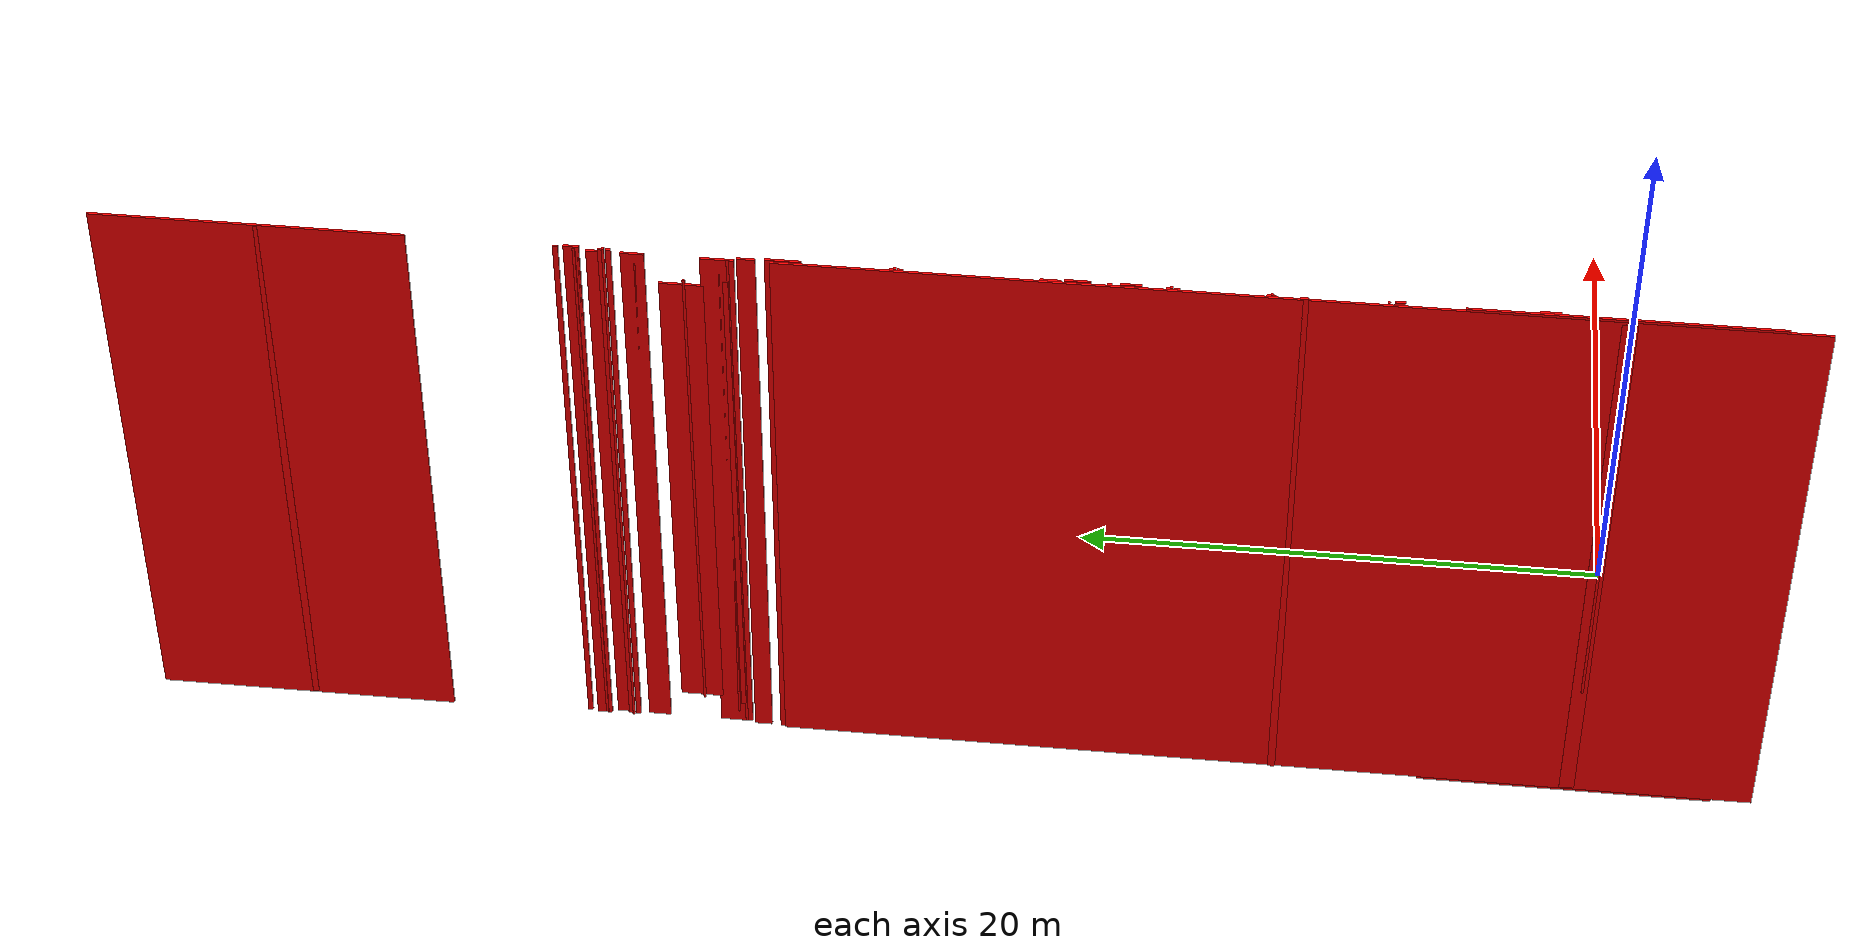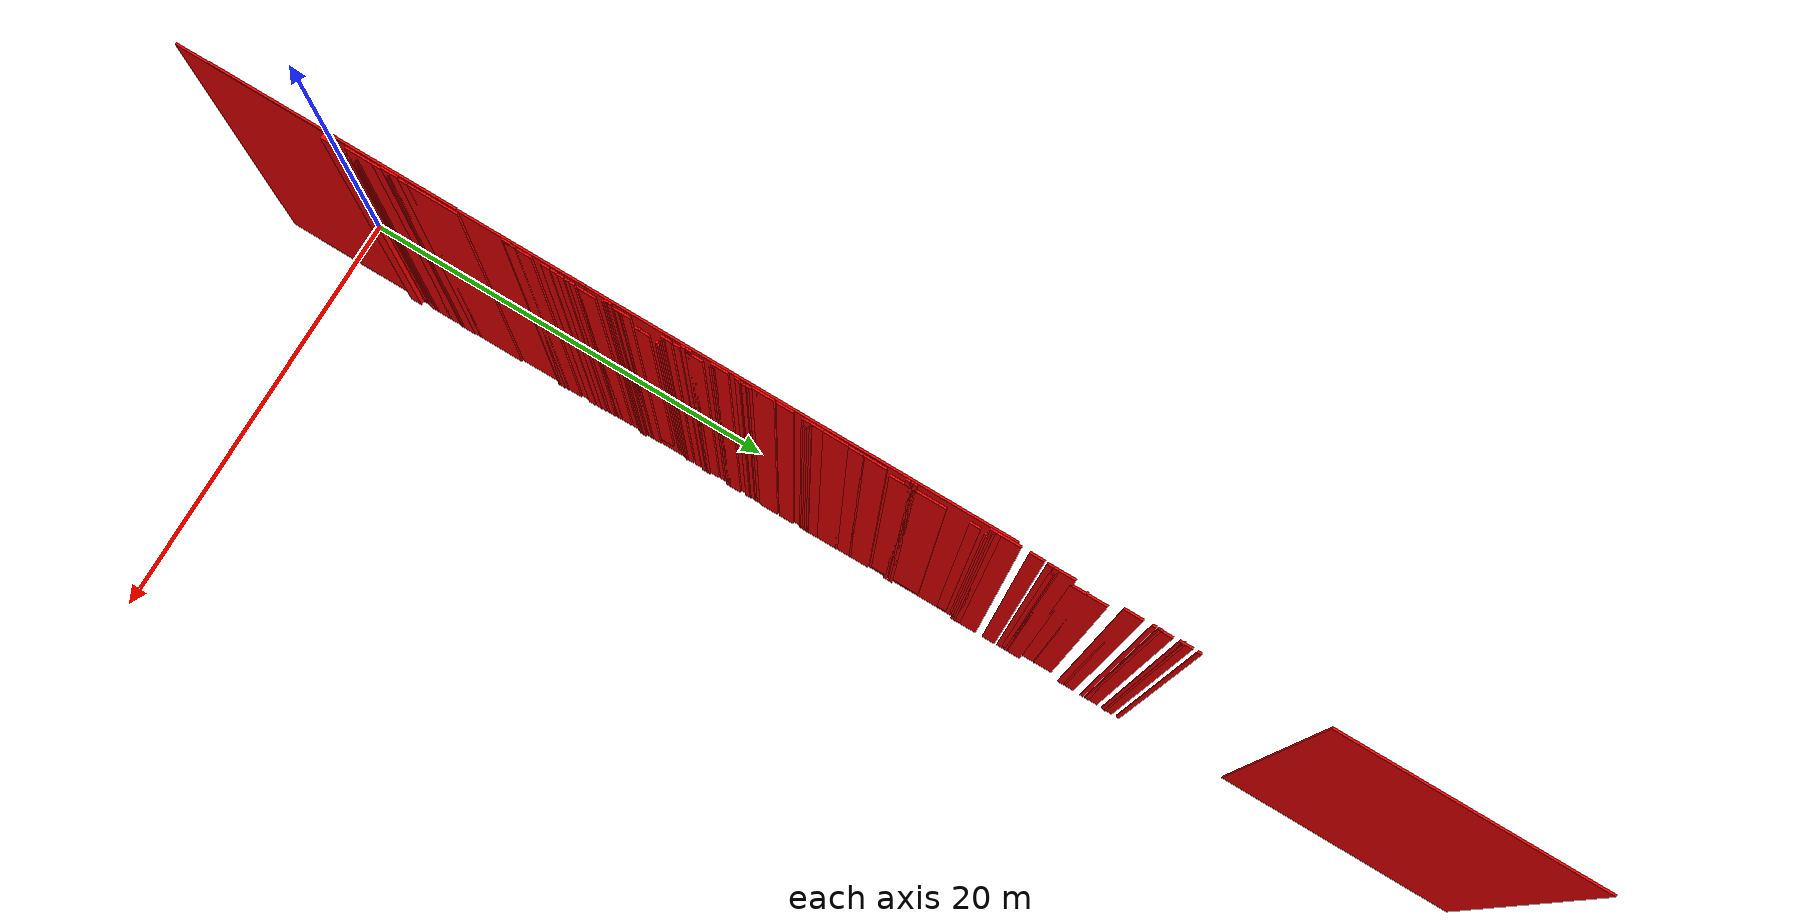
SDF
<?xml version="1.0" ?>
<sdf version="1.5">
  <world name="box_world.world">
    <!-- A global light source -->
    <include>
      <uri>model://sun</uri>
    </include>
    <model name="box_0">
          <pose>0.0 0.0 0.5 0.0 0.0 0.0</pose>
          <link name="link">
            <collision name="collision">
              <geometry>
                <box>
                  <size>0.30000000000000004 0.1 13.200000000000001</size>
                </box>
              </geometry>
            </collision>
            <visual name="visual">
              <geometry>
                <box>
                  <size>0.30000000000000004 0.1 13.200000000000001</size>
                </box>
              </geometry>
              <material>
                <ambient>1 0 0 1</ambient>
                <diffuse>1 0 0 1</diffuse>
              </material>
            </visual>
          </link>
    </model>
    <model name="box_1">
          <pose>0.0 0.1 0.5 0.0 0.0 0.0</pose>
          <link name="link">
            <collision name="collision">
              <geometry>
                <box>
                  <size>0.1 0.1 24.0</size>
                </box>
              </geometry>
            </collision>
            <visual name="visual">
              <geometry>
                <box>
                  <size>0.1 0.1 24.0</size>
                </box>
              </geometry>
              <material>
                <ambient>1 0 0 1</ambient>
                <diffuse>1 0 0 1</diffuse>
              </material>
            </visual>
          </link>
    </model>
    <model name="box_2">
          <pose>0.0 0.2 0.5 0.0 0.0 0.0</pose>
          <link name="link">
            <collision name="collision">
              <geometry>
                <box>
                  <size>0.1 11.8 24.3</size>
                </box>
              </geometry>
            </collision>
            <visual name="visual">
              <geometry>
                <box>
                  <size>0.1 11.8 24.3</size>
                </box>
              </geometry>
              <material>
                <ambient>1 0 0 1</ambient>
                <diffuse>1 0 0 1</diffuse>
              </material>
            </visual>
          </link>
    </model>
    <model name="box_3">
          <pose>0.0 12.0 0.5 0.0 0.0 0.0</pose>
          <link name="link">
            <collision name="collision">
              <geometry>
                <box>
                  <size>0.1 0.30000000000000004 24.200000000000003</size>
                </box>
              </geometry>
            </collision>
            <visual name="visual">
              <geometry>
                <box>
                  <size>0.1 0.30000000000000004 24.200000000000003</size>
                </box>
              </geometry>
              <material>
                <ambient>1 0 0 1</ambient>
                <diffuse>1 0 0 1</diffuse>
              </material>
            </visual>
          </link>
    </model>
    <model name="box_4">
          <pose>0.0 12.3 0.5 0.0 0.0 0.0</pose>
          <link name="link">
            <collision name="collision">
              <geometry>
                <box>
                  <size>0.1 39.2 24.1</size>
                </box>
              </geometry>
            </collision>
            <visual name="visual">
              <geometry>
                <box>
                  <size>0.1 39.2 24.1</size>
                </box>
              </geometry>
              <material>
                <ambient>1 0 0 1</ambient>
                <diffuse>1 0 0 1</diffuse>
              </material>
            </visual>
          </link>
    </model>
    <model name="box_5">
          <pose>0.0 51.5 0.5 0.0 0.0 0.0</pose>
          <link name="link">
            <collision name="collision">
              <geometry>
                <box>
                  <size>0.1 0.30000000000000004 24.200000000000003</size>
                </box>
              </geometry>
            </collision>
            <visual name="visual">
              <geometry>
                <box>
                  <size>0.1 0.30000000000000004 24.200000000000003</size>
                </box>
              </geometry>
              <material>
                <ambient>1 0 0 1</ambient>
                <diffuse>1 0 0 1</diffuse>
              </material>
            </visual>
          </link>
    </model>
    <model name="box_6">
          <pose>0.0 51.800000000000004 0.5 0.0 0.0 0.0</pose>
          <link name="link">
            <collision name="collision">
              <geometry>
                <box>
                  <size>0.1 12.200000000000001 24.3</size>
                </box>
              </geometry>
            </collision>
            <visual name="visual">
              <geometry>
                <box>
                  <size>0.1 12.200000000000001 24.3</size>
                </box>
              </geometry>
              <material>
                <ambient>1 0 0 1</ambient>
                <diffuse>1 0 0 1</diffuse>
              </material>
            </visual>
          </link>
    </model>
    <model name="box_7">
          <pose>0.1 0.1 0.5 0.0 0.0 0.0</pose>
          <link name="link">
            <collision name="collision">
              <geometry>
                <box>
                  <size>0.4 0.6000000000000001 23.900000000000002</size>
                </box>
              </geometry>
            </collision>
            <visual name="visual">
              <geometry>
                <box>
                  <size>0.4 0.6000000000000001 23.900000000000002</size>
                </box>
              </geometry>
              <material>
                <ambient>1 0 0 1</ambient>
                <diffuse>1 0 0 1</diffuse>
              </material>
            </visual>
          </link>
    </model>
    <model name="box_8">
          <pose>0.1 0.7000000000000001 0.5 0.0 0.0 0.0</pose>
          <link name="link">
            <collision name="collision">
              <geometry>
                <box>
                  <size>0.1 0.1 22.200000000000003</size>
                </box>
              </geometry>
            </collision>
            <visual name="visual">
              <geometry>
                <box>
                  <size>0.1 0.1 22.200000000000003</size>
                </box>
              </geometry>
              <material>
                <ambient>1 0 0 1</ambient>
                <diffuse>1 0 0 1</diffuse>
              </material>
            </visual>
          </link>
    </model>
    <model name="box_9">
          <pose>0.1 0.8 0.5 0.0 0.0 0.0</pose>
          <link name="link">
            <collision name="collision">
              <geometry>
                <box>
                  <size>0.2 0.2 21.3</size>
                </box>
              </geometry>
            </collision>
            <visual name="visual">
              <geometry>
                <box>
                  <size>0.2 0.2 21.3</size>
                </box>
              </geometry>
              <material>
                <ambient>1 0 0 1</ambient>
                <diffuse>1 0 0 1</diffuse>
              </material>
            </visual>
          </link>
    </model>
    <model name="box_10">
          <pose>0.1 1.0 0.5 0.0 0.0 0.0</pose>
          <link name="link">
            <collision name="collision">
              <geometry>
                <box>
                  <size>0.2 0.1 20.900000000000002</size>
                </box>
              </geometry>
            </collision>
            <visual name="visual">
              <geometry>
                <box>
                  <size>0.2 0.1 20.900000000000002</size>
                </box>
              </geometry>
              <material>
                <ambient>1 0 0 1</ambient>
                <diffuse>1 0 0 1</diffuse>
              </material>
            </visual>
          </link>
    </model>
    <model name="box_11">
          <pose>0.1 1.1 0.5 0.0 0.0 0.0</pose>
          <link name="link">
            <collision name="collision">
              <geometry>
                <box>
                  <size>0.2 0.1 20.0</size>
                </box>
              </geometry>
            </collision>
            <visual name="visual">
              <geometry>
                <box>
                  <size>0.2 0.1 20.0</size>
                </box>
              </geometry>
              <material>
                <ambient>1 0 0 1</ambient>
                <diffuse>1 0 0 1</diffuse>
              </material>
            </visual>
          </link>
    </model>
    <model name="box_12">
          <pose>0.1 1.2000000000000002 0.5 0.0 0.0 0.0</pose>
          <link name="link">
            <collision name="collision">
              <geometry>
                <box>
                  <size>0.2 0.1 21.0</size>
                </box>
              </geometry>
            </collision>
            <visual name="visual">
              <geometry>
                <box>
                  <size>0.2 0.1 21.0</size>
                </box>
              </geometry>
              <material>
                <ambient>1 0 0 1</ambient>
                <diffuse>1 0 0 1</diffuse>
              </material>
            </visual>
          </link>
    </model>
    <model name="box_13">
          <pose>0.1 1.3 0.5 0.0 0.0 0.0</pose>
          <link name="link">
            <collision name="collision">
              <geometry>
                <box>
                  <size>0.2 0.1 22.5</size>
                </box>
              </geometry>
            </collision>
            <visual name="visual">
              <geometry>
                <box>
                  <size>0.2 0.1 22.5</size>
                </box>
              </geometry>
              <material>
                <ambient>1 0 0 1</ambient>
                <diffuse>1 0 0 1</diffuse>
              </material>
            </visual>
          </link>
    </model>
    <model name="box_14">
          <pose>0.1 1.4000000000000001 0.5 0.0 0.0 0.0</pose>
          <link name="link">
            <collision name="collision">
              <geometry>
                <box>
                  <size>0.1 0.1 23.8</size>
                </box>
              </geometry>
            </collision>
            <visual name="visual">
              <geometry>
                <box>
                  <size>0.1 0.1 23.8</size>
                </box>
              </geometry>
              <material>
                <ambient>1 0 0 1</ambient>
                <diffuse>1 0 0 1</diffuse>
              </material>
            </visual>
          </link>
    </model>
    <model name="box_15">
          <pose>0.1 1.5 0.5 0.0 0.0 0.0</pose>
          <link name="link">
            <collision name="collision">
              <geometry>
                <box>
                  <size>0.1 1.3 23.900000000000002</size>
                </box>
              </geometry>
            </collision>
            <visual name="visual">
              <geometry>
                <box>
                  <size>0.1 1.3 23.900000000000002</size>
                </box>
              </geometry>
              <material>
                <ambient>1 0 0 1</ambient>
                <diffuse>1 0 0 1</diffuse>
              </material>
            </visual>
          </link>
    </model>
    <model name="box_16">
          <pose>0.1 2.8000000000000003 0.5 0.0 0.0 0.0</pose>
          <link name="link">
            <collision name="collision">
              <geometry>
                <box>
                  <size>0.2 0.1 23.1</size>
                </box>
              </geometry>
            </collision>
            <visual name="visual">
              <geometry>
                <box>
                  <size>0.2 0.1 23.1</size>
                </box>
              </geometry>
              <material>
                <ambient>1 0 0 1</ambient>
                <diffuse>1 0 0 1</diffuse>
              </material>
            </visual>
          </link>
    </model>
    <model name="box_17">
          <pose>0.1 2.9000000000000004 0.5 0.0 0.0 0.0</pose>
          <link name="link">
            <collision name="collision">
              <geometry>
                <box>
                  <size>0.1 0.1 23.5</size>
                </box>
              </geometry>
            </collision>
            <visual name="visual">
              <geometry>
                <box>
                  <size>0.1 0.1 23.5</size>
                </box>
              </geometry>
              <material>
                <ambient>1 0 0 1</ambient>
                <diffuse>1 0 0 1</diffuse>
              </material>
            </visual>
          </link>
    </model>
    <model name="box_18">
          <pose>0.1 3.0 0.5 0.0 0.0 0.0</pose>
          <link name="link">
            <collision name="collision">
              <geometry>
                <box>
                  <size>0.1 0.8 24.3</size>
                </box>
              </geometry>
            </collision>
            <visual name="visual">
              <geometry>
                <box>
                  <size>0.1 0.8 24.3</size>
                </box>
              </geometry>
              <material>
                <ambient>1 0 0 1</ambient>
                <diffuse>1 0 0 1</diffuse>
              </material>
            </visual>
          </link>
    </model>
    <model name="box_19">
          <pose>0.1 3.8000000000000003 0.5 0.0 0.0 0.0</pose>
          <link name="link">
            <collision name="collision">
              <geometry>
                <box>
                  <size>0.1 0.1 24.0</size>
                </box>
              </geometry>
            </collision>
            <visual name="visual">
              <geometry>
                <box>
                  <size>0.1 0.1 24.0</size>
                </box>
              </geometry>
              <material>
                <ambient>1 0 0 1</ambient>
                <diffuse>1 0 0 1</diffuse>
              </material>
            </visual>
          </link>
    </model>
    <model name="box_20">
          <pose>0.1 3.9000000000000004 0.5 0.0 0.0 0.0</pose>
          <link name="link">
            <collision name="collision">
              <geometry>
                <box>
                  <size>0.1 4.6000000000000005 23.900000000000002</size>
                </box>
              </geometry>
            </collision>
            <visual name="visual">
              <geometry>
                <box>
                  <size>0.1 4.6000000000000005 23.900000000000002</size>
                </box>
              </geometry>
              <material>
                <ambient>1 0 0 1</ambient>
                <diffuse>1 0 0 1</diffuse>
              </material>
            </visual>
          </link>
    </model>
    <model name="box_21">
          <pose>0.1 8.5 0.5 0.0 0.0 0.0</pose>
          <link name="link">
            <collision name="collision">
              <geometry>
                <box>
                  <size>0.1 0.4 24.3</size>
                </box>
              </geometry>
            </collision>
            <visual name="visual">
              <geometry>
                <box>
                  <size>0.1 0.4 24.3</size>
                </box>
              </geometry>
              <material>
                <ambient>1 0 0 1</ambient>
                <diffuse>1 0 0 1</diffuse>
              </material>
            </visual>
          </link>
    </model>
    <model name="box_22">
          <pose>0.1 8.9 0.5 0.0 0.0 0.0</pose>
          <link name="link">
            <collision name="collision">
              <geometry>
                <box>
                  <size>0.1 0.1 24.200000000000003</size>
                </box>
              </geometry>
            </collision>
            <visual name="visual">
              <geometry>
                <box>
                  <size>0.1 0.1 24.200000000000003</size>
                </box>
              </geometry>
              <material>
                <ambient>1 0 0 1</ambient>
                <diffuse>1 0 0 1</diffuse>
              </material>
            </visual>
          </link>
    </model>
    <model name="box_23">
          <pose>0.1 9.0 0.5 0.0 0.0 0.0</pose>
          <link name="link">
            <collision name="collision">
              <geometry>
                <box>
                  <size>0.1 1.3 23.900000000000002</size>
                </box>
              </geometry>
            </collision>
            <visual name="visual">
              <geometry>
                <box>
                  <size>0.1 1.3 23.900000000000002</size>
                </box>
              </geometry>
              <material>
                <ambient>1 0 0 1</ambient>
                <diffuse>1 0 0 1</diffuse>
              </material>
            </visual>
          </link>
    </model>
    <model name="box_24">
          <pose>0.1 10.3 0.5 0.0 0.0 0.0</pose>
          <link name="link">
            <collision name="collision">
              <geometry>
                <box>
                  <size>0.1 0.4 23.8</size>
                </box>
              </geometry>
            </collision>
            <visual name="visual">
              <geometry>
                <box>
                  <size>0.1 0.4 23.8</size>
                </box>
              </geometry>
              <material>
                <ambient>1 0 0 1</ambient>
                <diffuse>1 0 0 1</diffuse>
              </material>
            </visual>
          </link>
    </model>
    <model name="box_25">
          <pose>0.1 10.700000000000001 0.5 0.0 0.0 0.0</pose>
          <link name="link">
            <collision name="collision">
              <geometry>
                <box>
                  <size>0.1 0.30000000000000004 23.700000000000003</size>
                </box>
              </geometry>
            </collision>
            <visual name="visual">
              <geometry>
                <box>
                  <size>0.1 0.30000000000000004 23.700000000000003</size>
                </box>
              </geometry>
              <material>
                <ambient>1 0 0 1</ambient>
                <diffuse>1 0 0 1</diffuse>
              </material>
            </visual>
          </link>
    </model>
    <model name="box_26">
          <pose>0.1 11.0 0.5 0.0 0.0 0.0</pose>
          <link name="link">
            <collision name="collision">
              <geometry>
                <box>
                  <size>0.1 0.30000000000000004 23.5</size>
                </box>
              </geometry>
            </collision>
            <visual name="visual">
              <geometry>
                <box>
                  <size>0.1 0.30000000000000004 23.5</size>
                </box>
              </geometry>
              <material>
                <ambient>1 0 0 1</ambient>
                <diffuse>1 0 0 1</diffuse>
              </material>
            </visual>
          </link>
    </model>
    <model name="box_27">
          <pose>0.1 11.3 0.5 0.0 0.0 0.0</pose>
          <link name="link">
            <collision name="collision">
              <geometry>
                <box>
                  <size>0.1 0.2 23.400000000000002</size>
                </box>
              </geometry>
            </collision>
            <visual name="visual">
              <geometry>
                <box>
                  <size>0.1 0.2 23.400000000000002</size>
                </box>
              </geometry>
              <material>
                <ambient>1 0 0 1</ambient>
                <diffuse>1 0 0 1</diffuse>
              </material>
            </visual>
          </link>
    </model>
    <model name="box_28">
          <pose>0.1 11.5 0.5 0.0 0.0 0.0</pose>
          <link name="link">
            <collision name="collision">
              <geometry>
                <box>
                  <size>0.1 0.30000000000000004 23.3</size>
                </box>
              </geometry>
            </collision>
            <visual name="visual">
              <geometry>
                <box>
                  <size>0.1 0.30000000000000004 23.3</size>
                </box>
              </geometry>
              <material>
                <ambient>1 0 0 1</ambient>
                <diffuse>1 0 0 1</diffuse>
              </material>
            </visual>
          </link>
    </model>
    <model name="box_29">
          <pose>0.1 11.8 0.5 0.0 0.0 0.0</pose>
          <link name="link">
            <collision name="collision">
              <geometry>
                <box>
                  <size>0.1 0.1 23.200000000000003</size>
                </box>
              </geometry>
            </collision>
            <visual name="visual">
              <geometry>
                <box>
                  <size>0.1 0.1 23.200000000000003</size>
                </box>
              </geometry>
              <material>
                <ambient>1 0 0 1</ambient>
                <diffuse>1 0 0 1</diffuse>
              </material>
            </visual>
          </link>
    </model>
    <model name="box_30">
          <pose>0.1 11.9 0.5 0.0 0.0 0.0</pose>
          <link name="link">
            <collision name="collision">
              <geometry>
                <box>
                  <size>0.1 0.30000000000000004 23.1</size>
                </box>
              </geometry>
            </collision>
            <visual name="visual">
              <geometry>
                <box>
                  <size>0.1 0.30000000000000004 23.1</size>
                </box>
              </geometry>
              <material>
                <ambient>1 0 0 1</ambient>
                <diffuse>1 0 0 1</diffuse>
              </material>
            </visual>
          </link>
    </model>
    <model name="box_31">
          <pose>0.1 12.200000000000001 0.5 0.0 0.0 0.0</pose>
          <link name="link">
            <collision name="collision">
              <geometry>
                <box>
                  <size>0.1 0.8 23.0</size>
                </box>
              </geometry>
            </collision>
            <visual name="visual">
              <geometry>
                <box>
                  <size>0.1 0.8 23.0</size>
                </box>
              </geometry>
              <material>
                <ambient>1 0 0 1</ambient>
                <diffuse>1 0 0 1</diffuse>
              </material>
            </visual>
          </link>
    </model>
    <model name="box_32">
          <pose>0.1 13.0 0.5 0.0 0.0 0.0</pose>
          <link name="link">
            <collision name="collision">
              <geometry>
                <box>
                  <size>0.1 0.1 23.6</size>
                </box>
              </geometry>
            </collision>
            <visual name="visual">
              <geometry>
                <box>
                  <size>0.1 0.1 23.6</size>
                </box>
              </geometry>
              <material>
                <ambient>1 0 0 1</ambient>
                <diffuse>1 0 0 1</diffuse>
              </material>
            </visual>
          </link>
    </model>
    <model name="box_33">
          <pose>0.1 13.100000000000001 0.5 0.0 0.0 0.0</pose>
          <link name="link">
            <collision name="collision">
              <geometry>
                <box>
                  <size>0.1 0.1 24.1</size>
                </box>
              </geometry>
            </collision>
            <visual name="visual">
              <geometry>
                <box>
                  <size>0.1 0.1 24.1</size>
                </box>
              </geometry>
              <material>
                <ambient>1 0 0 1</ambient>
                <diffuse>1 0 0 1</diffuse>
              </material>
            </visual>
          </link>
    </model>
    <model name="box_34">
          <pose>0.1 13.200000000000001 0.5 0.0 0.0 0.0</pose>
          <link name="link">
            <collision name="collision">
              <geometry>
                <box>
                  <size>0.1 0.1 24.200000000000003</size>
                </box>
              </geometry>
            </collision>
            <visual name="visual">
              <geometry>
                <box>
                  <size>0.1 0.1 24.200000000000003</size>
                </box>
              </geometry>
              <material>
                <ambient>1 0 0 1</ambient>
                <diffuse>1 0 0 1</diffuse>
              </material>
            </visual>
          </link>
    </model>
    <model name="box_35">
          <pose>0.1 13.3 0.5 0.0 0.0 0.0</pose>
          <link name="link">
            <collision name="collision">
              <geometry>
                <box>
                  <size>0.1 0.2 24.1</size>
                </box>
              </geometry>
            </collision>
            <visual name="visual">
              <geometry>
                <box>
                  <size>0.1 0.2 24.1</size>
                </box>
              </geometry>
              <material>
                <ambient>1 0 0 1</ambient>
                <diffuse>1 0 0 1</diffuse>
              </material>
            </visual>
          </link>
    </model>
    <model name="box_36">
          <pose>0.1 13.5 0.5 0.0 0.0 0.0</pose>
          <link name="link">
            <collision name="collision">
              <geometry>
                <box>
                  <size>0.1 0.1 23.3</size>
                </box>
              </geometry>
            </collision>
            <visual name="visual">
              <geometry>
                <box>
                  <size>0.1 0.1 23.3</size>
                </box>
              </geometry>
              <material>
                <ambient>1 0 0 1</ambient>
                <diffuse>1 0 0 1</diffuse>
              </material>
            </visual>
          </link>
    </model>
    <model name="box_37">
          <pose>0.1 13.600000000000001 0.5 0.0 0.0 0.0</pose>
          <link name="link">
            <collision name="collision">
              <geometry>
                <box>
                  <size>0.1 0.2 23.1</size>
                </box>
              </geometry>
            </collision>
            <visual name="visual">
              <geometry>
                <box>
                  <size>0.1 0.2 23.1</size>
                </box>
              </geometry>
              <material>
                <ambient>1 0 0 1</ambient>
                <diffuse>1 0 0 1</diffuse>
              </material>
            </visual>
          </link>
    </model>
    <model name="box_38">
          <pose>0.1 13.8 0.5 0.0 0.0 0.0</pose>
          <link name="link">
            <collision name="collision">
              <geometry>
                <box>
                  <size>0.1 0.1 23.200000000000003</size>
                </box>
              </geometry>
            </collision>
            <visual name="visual">
              <geometry>
                <box>
                  <size>0.1 0.1 23.200000000000003</size>
                </box>
              </geometry>
              <material>
                <ambient>1 0 0 1</ambient>
                <diffuse>1 0 0 1</diffuse>
              </material>
            </visual>
          </link>
    </model>
    <model name="box_39">
          <pose>0.1 13.9 0.5 0.0 0.0 0.0</pose>
          <link name="link">
            <collision name="collision">
              <geometry>
                <box>
                  <size>0.1 0.7000000000000001 23.3</size>
                </box>
              </geometry>
            </collision>
            <visual name="visual">
              <geometry>
                <box>
                  <size>0.1 0.7000000000000001 23.3</size>
                </box>
              </geometry>
              <material>
                <ambient>1 0 0 1</ambient>
                <diffuse>1 0 0 1</diffuse>
              </material>
            </visual>
          </link>
    </model>
    <model name="box_40">
          <pose>0.1 14.600000000000001 0.5 0.0 0.0 0.0</pose>
          <link name="link">
            <collision name="collision">
              <geometry>
                <box>
                  <size>0.1 0.1 21.200000000000003</size>
                </box>
              </geometry>
            </collision>
            <visual name="visual">
              <geometry>
                <box>
                  <size>0.1 0.1 21.200000000000003</size>
                </box>
              </geometry>
              <material>
                <ambient>1 0 0 1</ambient>
                <diffuse>1 0 0 1</diffuse>
              </material>
            </visual>
          </link>
    </model>
    <model name="box_41">
          <pose>0.1 14.700000000000001 0.5 0.0 0.0 0.0</pose>
          <link name="link">
            <collision name="collision">
              <geometry>
                <box>
                  <size>0.1 0.7000000000000001 20.900000000000002</size>
                </box>
              </geometry>
            </collision>
            <visual name="visual">
              <geometry>
                <box>
                  <size>0.1 0.7000000000000001 20.900000000000002</size>
                </box>
              </geometry>
              <material>
                <ambient>1 0 0 1</ambient>
                <diffuse>1 0 0 1</diffuse>
              </material>
            </visual>
          </link>
    </model>
    <model name="box_42">
          <pose>0.1 15.4 0.5 0.0 0.0 0.0</pose>
          <link name="link">
            <collision name="collision">
              <geometry>
                <box>
                  <size>0.2 0.1 20.400000000000002</size>
                </box>
              </geometry>
            </collision>
            <visual name="visual">
              <geometry>
                <box>
                  <size>0.2 0.1 20.400000000000002</size>
                </box>
              </geometry>
              <material>
                <ambient>1 0 0 1</ambient>
                <diffuse>1 0 0 1</diffuse>
              </material>
            </visual>
          </link>
    </model>
    <model name="box_43">
          <pose>0.1 15.5 0.5 0.0 0.0 0.0</pose>
          <link name="link">
            <collision name="collision">
              <geometry>
                <box>
                  <size>0.2 0.1 20.0</size>
                </box>
              </geometry>
            </collision>
            <visual name="visual">
              <geometry>
                <box>
                  <size>0.2 0.1 20.0</size>
                </box>
              </geometry>
              <material>
                <ambient>1 0 0 1</ambient>
                <diffuse>1 0 0 1</diffuse>
              </material>
            </visual>
          </link>
    </model>
    <model name="box_44">
          <pose>0.1 15.600000000000001 0.5 0.0 0.0 0.0</pose>
          <link name="link">
            <collision name="collision">
              <geometry>
                <box>
                  <size>0.2 0.1 20.900000000000002</size>
                </box>
              </geometry>
            </collision>
            <visual name="visual">
              <geometry>
                <box>
                  <size>0.2 0.1 20.900000000000002</size>
                </box>
              </geometry>
              <material>
                <ambient>1 0 0 1</ambient>
                <diffuse>1 0 0 1</diffuse>
              </material>
            </visual>
          </link>
    </model>
    <model name="box_45">
          <pose>0.1 15.700000000000001 0.5 0.0 0.0 0.0</pose>
          <link name="link">
            <collision name="collision">
              <geometry>
                <box>
                  <size>0.2 0.1 22.5</size>
                </box>
              </geometry>
            </collision>
            <visual name="visual">
              <geometry>
                <box>
                  <size>0.2 0.1 22.5</size>
                </box>
              </geometry>
              <material>
                <ambient>1 0 0 1</ambient>
                <diffuse>1 0 0 1</diffuse>
              </material>
            </visual>
          </link>
    </model>
    <model name="box_46">
          <pose>0.1 15.8 0.5 0.0 0.0 0.0</pose>
          <link name="link">
            <collision name="collision">
              <geometry>
                <box>
                  <size>0.2 0.1 23.3</size>
                </box>
              </geometry>
            </collision>
            <visual name="visual">
              <geometry>
                <box>
                  <size>0.2 0.1 23.3</size>
                </box>
              </geometry>
              <material>
                <ambient>1 0 0 1</ambient>
                <diffuse>1 0 0 1</diffuse>
              </material>
            </visual>
          </link>
    </model>
    <model name="box_47">
          <pose>0.1 15.9 0.5 0.0 0.0 0.0</pose>
          <link name="link">
            <collision name="collision">
              <geometry>
                <box>
                  <size>0.1 0.5 23.400000000000002</size>
                </box>
              </geometry>
            </collision>
            <visual name="visual">
              <geometry>
                <box>
                  <size>0.1 0.5 23.400000000000002</size>
                </box>
              </geometry>
              <material>
                <ambient>1 0 0 1</ambient>
                <diffuse>1 0 0 1</diffuse>
              </material>
            </visual>
          </link>
    </model>
    <model name="box_48">
          <pose>0.1 16.400000000000002 0.5 0.0 0.0 0.0</pose>
          <link name="link">
            <collision name="collision">
              <geometry>
                <box>
                  <size>0.1 0.30000000000000004 23.3</size>
                </box>
              </geometry>
            </collision>
            <visual name="visual">
              <geometry>
                <box>
                  <size>0.1 0.30000000000000004 23.3</size>
                </box>
              </geometry>
              <material>
                <ambient>1 0 0 1</ambient>
                <diffuse>1 0 0 1</diffuse>
              </material>
            </visual>
          </link>
    </model>
    <model name="box_49">
          <pose>0.1 16.7 0.5 0.0 0.0 0.0</pose>
          <link name="link">
            <collision name="collision">
              <geometry>
                <box>
                  <size>0.1 0.2 24.1</size>
                </box>
              </geometry>
            </collision>
            <visual name="visual">
              <geometry>
                <box>
                  <size>0.1 0.2 24.1</size>
                </box>
              </geometry>
              <material>
                <ambient>1 0 0 1</ambient>
                <diffuse>1 0 0 1</diffuse>
              </material>
            </visual>
          </link>
    </model>
    <model name="box_50">
          <pose>0.1 16.900000000000002 0.5 0.0 0.0 0.0</pose>
          <link name="link">
            <collision name="collision">
              <geometry>
                <box>
                  <size>0.1 0.1 24.200000000000003</size>
                </box>
              </geometry>
            </collision>
            <visual name="visual">
              <geometry>
                <box>
                  <size>0.1 0.1 24.200000000000003</size>
                </box>
              </geometry>
              <material>
                <ambient>1 0 0 1</ambient>
                <diffuse>1 0 0 1</diffuse>
              </material>
            </visual>
          </link>
    </model>
    <model name="box_51">
          <pose>0.1 17.0 0.5 0.0 0.0 0.0</pose>
          <link name="link">
            <collision name="collision">
              <geometry>
                <box>
                  <size>0.1 0.2 24.1</size>
                </box>
              </geometry>
            </collision>
            <visual name="visual">
              <geometry>
                <box>
                  <size>0.1 0.2 24.1</size>
                </box>
              </geometry>
              <material>
                <ambient>1 0 0 1</ambient>
                <diffuse>1 0 0 1</diffuse>
              </material>
            </visual>
          </link>
    </model>
    <model name="box_52">
          <pose>0.1 17.2 0.5 0.0 0.0 0.0</pose>
          <link name="link">
            <collision name="collision">
              <geometry>
                <box>
                  <size>0.1 0.8 23.1</size>
                </box>
              </geometry>
            </collision>
            <visual name="visual">
              <geometry>
                <box>
                  <size>0.1 0.8 23.1</size>
                </box>
              </geometry>
              <material>
                <ambient>1 0 0 1</ambient>
                <diffuse>1 0 0 1</diffuse>
              </material>
            </visual>
          </link>
    </model>
    <model name="box_53">
          <pose>0.1 18.0 0.5 0.0 0.0 0.0</pose>
          <link name="link">
            <collision name="collision">
              <geometry>
                <box>
                  <size>0.1 0.2 23.0</size>
                </box>
              </geometry>
            </collision>
            <visual name="visual">
              <geometry>
                <box>
                  <size>0.1 0.2 23.0</size>
                </box>
              </geometry>
              <material>
                <ambient>1 0 0 1</ambient>
                <diffuse>1 0 0 1</diffuse>
              </material>
            </visual>
          </link>
    </model>
    <model name="box_54">
          <pose>0.1 18.2 0.5 0.0 0.0 0.0</pose>
          <link name="link">
            <collision name="collision">
              <geometry>
                <box>
                  <size>0.1 0.2 24.1</size>
                </box>
              </geometry>
            </collision>
            <visual name="visual">
              <geometry>
                <box>
                  <size>0.1 0.2 24.1</size>
                </box>
              </geometry>
              <material>
                <ambient>1 0 0 1</ambient>
                <diffuse>1 0 0 1</diffuse>
              </material>
            </visual>
          </link>
    </model>
    <model name="box_55">
          <pose>0.1 18.400000000000002 0.5 0.0 0.0 0.0</pose>
          <link name="link">
            <collision name="collision">
              <geometry>
                <box>
                  <size>0.1 0.8 24.200000000000003</size>
                </box>
              </geometry>
            </collision>
            <visual name="visual">
              <geometry>
                <box>
                  <size>0.1 0.8 24.200000000000003</size>
                </box>
              </geometry>
              <material>
                <ambient>1 0 0 1</ambient>
                <diffuse>1 0 0 1</diffuse>
              </material>
            </visual>
          </link>
    </model>
    <model name="box_56">
          <pose>0.1 19.200000000000003 0.5 0.0 0.0 0.0</pose>
          <link name="link">
            <collision name="collision">
              <geometry>
                <box>
                  <size>0.1 0.2 24.1</size>
                </box>
              </geometry>
            </collision>
            <visual name="visual">
              <geometry>
                <box>
                  <size>0.1 0.2 24.1</size>
                </box>
              </geometry>
              <material>
                <ambient>1 0 0 1</ambient>
                <diffuse>1 0 0 1</diffuse>
              </material>
            </visual>
          </link>
    </model>
    <model name="box_57">
          <pose>0.1 19.400000000000002 0.5 0.0 0.0 0.0</pose>
          <link name="link">
            <collision name="collision">
              <geometry>
                <box>
                  <size>0.1 0.1 23.700000000000003</size>
                </box>
              </geometry>
            </collision>
            <visual name="visual">
              <geometry>
                <box>
                  <size>0.1 0.1 23.700000000000003</size>
                </box>
              </geometry>
              <material>
                <ambient>1 0 0 1</ambient>
                <diffuse>1 0 0 1</diffuse>
              </material>
            </visual>
          </link>
    </model>
    <model name="box_58">
          <pose>0.1 19.5 0.5 0.0 0.0 0.0</pose>
          <link name="link">
            <collision name="collision">
              <geometry>
                <box>
                  <size>0.1 0.2 23.5</size>
                </box>
              </geometry>
            </collision>
            <visual name="visual">
              <geometry>
                <box>
                  <size>0.1 0.2 23.5</size>
                </box>
              </geometry>
              <material>
                <ambient>1 0 0 1</ambient>
                <diffuse>1 0 0 1</diffuse>
              </material>
            </visual>
          </link>
    </model>
    <model name="box_59">
          <pose>0.1 19.700000000000003 0.5 0.0 0.0 0.0</pose>
          <link name="link">
            <collision name="collision">
              <geometry>
                <box>
                  <size>0.1 0.1 23.6</size>
                </box>
              </geometry>
            </collision>
            <visual name="visual">
              <geometry>
                <box>
                  <size>0.1 0.1 23.6</size>
                </box>
              </geometry>
              <material>
                <ambient>1 0 0 1</ambient>
                <diffuse>1 0 0 1</diffuse>
              </material>
            </visual>
          </link>
    </model>
    <model name="box_60">
          <pose>0.1 19.8 0.5 0.0 0.0 0.0</pose>
          <link name="link">
            <collision name="collision">
              <geometry>
                <box>
                  <size>0.1 0.4 23.700000000000003</size>
                </box>
              </geometry>
            </collision>
            <visual name="visual">
              <geometry>
                <box>
                  <size>0.1 0.4 23.700000000000003</size>
                </box>
              </geometry>
              <material>
                <ambient>1 0 0 1</ambient>
                <diffuse>1 0 0 1</diffuse>
              </material>
            </visual>
          </link>
    </model>
    <model name="box_61">
          <pose>0.1 20.200000000000003 0.5 0.0 0.0 0.0</pose>
          <link name="link">
            <collision name="collision">
              <geometry>
                <box>
                  <size>0.1 0.2 24.1</size>
                </box>
              </geometry>
            </collision>
            <visual name="visual">
              <geometry>
                <box>
                  <size>0.1 0.2 24.1</size>
                </box>
              </geometry>
              <material>
                <ambient>1 0 0 1</ambient>
                <diffuse>1 0 0 1</diffuse>
              </material>
            </visual>
          </link>
    </model>
    <model name="box_62">
          <pose>0.1 20.400000000000002 0.5 0.0 0.0 0.0</pose>
          <link name="link">
            <collision name="collision">
              <geometry>
                <box>
                  <size>0.1 1.0 24.200000000000003</size>
                </box>
              </geometry>
            </collision>
            <visual name="visual">
              <geometry>
                <box>
                  <size>0.1 1.0 24.200000000000003</size>
                </box>
              </geometry>
              <material>
                <ambient>1 0 0 1</ambient>
                <diffuse>1 0 0 1</diffuse>
              </material>
            </visual>
          </link>
    </model>
    <model name="box_63">
          <pose>0.1 21.400000000000002 0.5 0.0 0.0 0.0</pose>
          <link name="link">
            <collision name="collision">
              <geometry>
                <box>
                  <size>0.1 0.8 24.1</size>
                </box>
              </geometry>
            </collision>
            <visual name="visual">
              <geometry>
                <box>
                  <size>0.1 0.8 24.1</size>
                </box>
              </geometry>
              <material>
                <ambient>1 0 0 1</ambient>
                <diffuse>1 0 0 1</diffuse>
              </material>
            </visual>
          </link>
    </model>
    <model name="box_64">
          <pose>0.1 22.200000000000003 0.5 0.0 0.0 0.0</pose>
          <link name="link">
            <collision name="collision">
              <geometry>
                <box>
                  <size>0.1 0.1 23.8</size>
                </box>
              </geometry>
            </collision>
            <visual name="visual">
              <geometry>
                <box>
                  <size>0.1 0.1 23.8</size>
                </box>
              </geometry>
              <material>
                <ambient>1 0 0 1</ambient>
                <diffuse>1 0 0 1</diffuse>
              </material>
            </visual>
          </link>
    </model>
    <model name="box_65">
          <pose>0.1 22.3 0.5 0.0 0.0 0.0</pose>
          <link name="link">
            <collision name="collision">
              <geometry>
                <box>
                  <size>0.2 0.1 22.1</size>
                </box>
              </geometry>
            </collision>
            <visual name="visual">
              <geometry>
                <box>
                  <size>0.2 0.1 22.1</size>
                </box>
              </geometry>
              <material>
                <ambient>1 0 0 1</ambient>
                <diffuse>1 0 0 1</diffuse>
              </material>
            </visual>
          </link>
    </model>
    <model name="box_66">
          <pose>0.1 22.400000000000002 0.5 0.0 0.0 0.0</pose>
          <link name="link">
            <collision name="collision">
              <geometry>
                <box>
                  <size>0.2 0.1 21.700000000000003</size>
                </box>
              </geometry>
            </collision>
            <visual name="visual">
              <geometry>
                <box>
                  <size>0.2 0.1 21.700000000000003</size>
                </box>
              </geometry>
              <material>
                <ambient>1 0 0 1</ambient>
                <diffuse>1 0 0 1</diffuse>
              </material>
            </visual>
          </link>
    </model>
    <model name="box_67">
          <pose>0.1 22.5 0.5 0.0 0.0 0.0</pose>
          <link name="link">
            <collision name="collision">
              <geometry>
                <box>
                  <size>0.2 0.1 22.5</size>
                </box>
              </geometry>
            </collision>
            <visual name="visual">
              <geometry>
                <box>
                  <size>0.2 0.1 22.5</size>
                </box>
              </geometry>
              <material>
                <ambient>1 0 0 1</ambient>
                <diffuse>1 0 0 1</diffuse>
              </material>
            </visual>
          </link>
    </model>
    <model name="box_68">
          <pose>0.1 22.6 0.5 0.0 0.0 0.0</pose>
          <link name="link">
            <collision name="collision">
              <geometry>
                <box>
                  <size>0.2 0.1 23.700000000000003</size>
                </box>
              </geometry>
            </collision>
            <visual name="visual">
              <geometry>
                <box>
                  <size>0.2 0.1 23.700000000000003</size>
                </box>
              </geometry>
              <material>
                <ambient>1 0 0 1</ambient>
                <diffuse>1 0 0 1</diffuse>
              </material>
            </visual>
          </link>
    </model>
    <model name="box_69">
          <pose>0.1 22.700000000000003 0.5 0.0 0.0 0.0</pose>
          <link name="link">
            <collision name="collision">
              <geometry>
                <box>
                  <size>0.1 0.9 23.900000000000002</size>
                </box>
              </geometry>
            </collision>
            <visual name="visual">
              <geometry>
                <box>
                  <size>0.1 0.9 23.900000000000002</size>
                </box>
              </geometry>
              <material>
                <ambient>1 0 0 1</ambient>
                <diffuse>1 0 0 1</diffuse>
              </material>
            </visual>
          </link>
    </model>
    <model name="box_70">
          <pose>0.1 23.6 0.5 0.0 0.0 0.0</pose>
          <link name="link">
            <collision name="collision">
              <geometry>
                <box>
                  <size>0.1 1.4000000000000001 23.8</size>
                </box>
              </geometry>
            </collision>
            <visual name="visual">
              <geometry>
                <box>
                  <size>0.1 1.4000000000000001 23.8</size>
                </box>
              </geometry>
              <material>
                <ambient>1 0 0 1</ambient>
                <diffuse>1 0 0 1</diffuse>
              </material>
            </visual>
          </link>
    </model>
    <model name="box_71">
          <pose>0.1 25.0 0.5 0.0 0.0 0.0</pose>
          <link name="link">
            <collision name="collision">
              <geometry>
                <box>
                  <size>0.1 0.1 23.700000000000003</size>
                </box>
              </geometry>
            </collision>
            <visual name="visual">
              <geometry>
                <box>
                  <size>0.1 0.1 23.700000000000003</size>
                </box>
              </geometry>
              <material>
                <ambient>1 0 0 1</ambient>
                <diffuse>1 0 0 1</diffuse>
              </material>
            </visual>
          </link>
    </model>
    <model name="box_72">
          <pose>0.1 25.1 0.5 0.0 0.0 0.0</pose>
          <link name="link">
            <collision name="collision">
              <geometry>
                <box>
                  <size>0.1 1.9000000000000001 23.6</size>
                </box>
              </geometry>
            </collision>
            <visual name="visual">
              <geometry>
                <box>
                  <size>0.1 1.9000000000000001 23.6</size>
                </box>
              </geometry>
              <material>
                <ambient>1 0 0 1</ambient>
                <diffuse>1 0 0 1</diffuse>
              </material>
            </visual>
          </link>
    </model>
    <model name="box_73">
          <pose>0.1 27.0 0.5 0.0 0.0 0.0</pose>
          <link name="link">
            <collision name="collision">
              <geometry>
                <box>
                  <size>0.1 0.2 24.1</size>
                </box>
              </geometry>
            </collision>
            <visual name="visual">
              <geometry>
                <box>
                  <size>0.1 0.2 24.1</size>
                </box>
              </geometry>
              <material>
                <ambient>1 0 0 1</ambient>
                <diffuse>1 0 0 1</diffuse>
              </material>
            </visual>
          </link>
    </model>
    <model name="box_74">
          <pose>0.1 27.200000000000003 0.5 0.0 0.0 0.0</pose>
          <link name="link">
            <collision name="collision">
              <geometry>
                <box>
                  <size>0.1 0.1 24.200000000000003</size>
                </box>
              </geometry>
            </collision>
            <visual name="visual">
              <geometry>
                <box>
                  <size>0.1 0.1 24.200000000000003</size>
                </box>
              </geometry>
              <material>
                <ambient>1 0 0 1</ambient>
                <diffuse>1 0 0 1</diffuse>
              </material>
            </visual>
          </link>
    </model>
    <model name="box_75">
          <pose>0.1 27.3 0.5 0.0 0.0 0.0</pose>
          <link name="link">
            <collision name="collision">
              <geometry>
                <box>
                  <size>0.1 0.2 24.1</size>
                </box>
              </geometry>
            </collision>
            <visual name="visual">
              <geometry>
                <box>
                  <size>0.1 0.2 24.1</size>
                </box>
              </geometry>
              <material>
                <ambient>1 0 0 1</ambient>
                <diffuse>1 0 0 1</diffuse>
              </material>
            </visual>
          </link>
    </model>
    <model name="box_76">
          <pose>0.1 27.5 0.5 0.0 0.0 0.0</pose>
          <link name="link">
            <collision name="collision">
              <geometry>
                <box>
                  <size>0.1 2.6 22.1</size>
                </box>
              </geometry>
            </collision>
            <visual name="visual">
              <geometry>
                <box>
                  <size>0.1 2.6 22.1</size>
                </box>
              </geometry>
              <material>
                <ambient>1 0 0 1</ambient>
                <diffuse>1 0 0 1</diffuse>
              </material>
            </visual>
          </link>
    </model>
    <model name="box_77">
          <pose>0.1 30.1 0.5 0.0 0.0 0.0</pose>
          <link name="link">
            <collision name="collision">
              <geometry>
                <box>
                  <size>0.1 0.5 22.200000000000003</size>
                </box>
              </geometry>
            </collision>
            <visual name="visual">
              <geometry>
                <box>
                  <size>0.1 0.5 22.200000000000003</size>
                </box>
              </geometry>
              <material>
                <ambient>1 0 0 1</ambient>
                <diffuse>1 0 0 1</diffuse>
              </material>
            </visual>
          </link>
    </model>
    <model name="box_78">
          <pose>0.1 30.6 0.5 0.0 0.0 0.0</pose>
          <link name="link">
            <collision name="collision">
              <geometry>
                <box>
                  <size>0.1 0.1 21.5</size>
                </box>
              </geometry>
            </collision>
            <visual name="visual">
              <geometry>
                <box>
                  <size>0.1 0.1 21.5</size>
                </box>
              </geometry>
              <material>
                <ambient>1 0 0 1</ambient>
                <diffuse>1 0 0 1</diffuse>
              </material>
            </visual>
          </link>
    </model>
    <model name="box_79">
          <pose>0.1 30.700000000000003 0.5 0.0 0.0 0.0</pose>
          <link name="link">
            <collision name="collision">
              <geometry>
                <box>
                  <size>0.2 0.1 21.1</size>
                </box>
              </geometry>
            </collision>
            <visual name="visual">
              <geometry>
                <box>
                  <size>0.2 0.1 21.1</size>
                </box>
              </geometry>
              <material>
                <ambient>1 0 0 1</ambient>
                <diffuse>1 0 0 1</diffuse>
              </material>
            </visual>
          </link>
    </model>
    <model name="box_80">
          <pose>0.1 30.8 0.5 0.0 0.0 0.0</pose>
          <link name="link">
            <collision name="collision">
              <geometry>
                <box>
                  <size>0.2 0.1 21.8</size>
                </box>
              </geometry>
            </collision>
            <visual name="visual">
              <geometry>
                <box>
                  <size>0.2 0.1 21.8</size>
                </box>
              </geometry>
              <material>
                <ambient>1 0 0 1</ambient>
                <diffuse>1 0 0 1</diffuse>
              </material>
            </visual>
          </link>
    </model>
    <model name="box_81">
          <pose>0.1 30.900000000000002 0.5 0.0 0.0 0.0</pose>
          <link name="link">
            <collision name="collision">
              <geometry>
                <box>
                  <size>0.2 0.1 23.8</size>
                </box>
              </geometry>
            </collision>
            <visual name="visual">
              <geometry>
                <box>
                  <size>0.2 0.1 23.8</size>
                </box>
              </geometry>
              <material>
                <ambient>1 0 0 1</ambient>
                <diffuse>1 0 0 1</diffuse>
              </material>
            </visual>
          </link>
    </model>
    <model name="box_82">
          <pose>0.1 31.0 0.5 0.0 0.0 0.0</pose>
          <link name="link">
            <collision name="collision">
              <geometry>
                <box>
                  <size>0.1 0.4 24.1</size>
                </box>
              </geometry>
            </collision>
            <visual name="visual">
              <geometry>
                <box>
                  <size>0.1 0.4 24.1</size>
                </box>
              </geometry>
              <material>
                <ambient>1 0 0 1</ambient>
                <diffuse>1 0 0 1</diffuse>
              </material>
            </visual>
          </link>
    </model>
    <model name="box_83">
          <pose>0.1 31.400000000000002 0.5 0.0 0.0 0.0</pose>
          <link name="link">
            <collision name="collision">
              <geometry>
                <box>
                  <size>0.1 1.4000000000000001 24.200000000000003</size>
                </box>
              </geometry>
            </collision>
            <visual name="visual">
              <geometry>
                <box>
                  <size>0.1 1.4000000000000001 24.200000000000003</size>
                </box>
              </geometry>
              <material>
                <ambient>1 0 0 1</ambient>
                <diffuse>1 0 0 1</diffuse>
              </material>
            </visual>
          </link>
    </model>
    <model name="box_84">
          <pose>0.1 32.800000000000004 0.5 0.0 0.0 0.0</pose>
          <link name="link">
            <collision name="collision">
              <geometry>
                <box>
                  <size>0.1 0.7000000000000001 24.1</size>
                </box>
              </geometry>
            </collision>
            <visual name="visual">
              <geometry>
                <box>
                  <size>0.1 0.7000000000000001 24.1</size>
                </box>
              </geometry>
              <material>
                <ambient>1 0 0 1</ambient>
                <diffuse>1 0 0 1</diffuse>
              </material>
            </visual>
          </link>
    </model>
    <model name="box_85">
          <pose>0.1 33.5 0.5 0.0 0.0 0.0</pose>
          <link name="link">
            <collision name="collision">
              <geometry>
                <box>
                  <size>0.1 0.1 23.900000000000002</size>
                </box>
              </geometry>
            </collision>
            <visual name="visual">
              <geometry>
                <box>
                  <size>0.1 0.1 23.900000000000002</size>
                </box>
              </geometry>
              <material>
                <ambient>1 0 0 1</ambient>
                <diffuse>1 0 0 1</diffuse>
              </material>
            </visual>
          </link>
    </model>
    <model name="box_86">
          <pose>0.1 33.6 0.5 0.0 0.0 0.0</pose>
          <link name="link">
            <collision name="collision">
              <geometry>
                <box>
                  <size>0.2 0.2 21.900000000000002</size>
                </box>
              </geometry>
            </collision>
            <visual name="visual">
              <geometry>
                <box>
                  <size>0.2 0.2 21.900000000000002</size>
                </box>
              </geometry>
              <material>
                <ambient>1 0 0 1</ambient>
                <diffuse>1 0 0 1</diffuse>
              </material>
            </visual>
          </link>
    </model>
    <model name="box_87">
          <pose>0.1 33.800000000000004 0.5 0.0 0.0 0.0</pose>
          <link name="link">
            <collision name="collision">
              <geometry>
                <box>
                  <size>0.1 0.1 22.900000000000002</size>
                </box>
              </geometry>
            </collision>
            <visual name="visual">
              <geometry>
                <box>
                  <size>0.1 0.1 22.900000000000002</size>
                </box>
              </geometry>
              <material>
                <ambient>1 0 0 1</ambient>
                <diffuse>1 0 0 1</diffuse>
              </material>
            </visual>
          </link>
    </model>
    <model name="box_88">
          <pose>0.1 33.9 0.5 0.0 0.0 0.0</pose>
          <link name="link">
            <collision name="collision">
              <geometry>
                <box>
                  <size>0.1 1.3 23.900000000000002</size>
                </box>
              </geometry>
            </collision>
            <visual name="visual">
              <geometry>
                <box>
                  <size>0.1 1.3 23.900000000000002</size>
                </box>
              </geometry>
              <material>
                <ambient>1 0 0 1</ambient>
                <diffuse>1 0 0 1</diffuse>
              </material>
            </visual>
          </link>
    </model>
    <model name="box_89">
          <pose>0.1 35.2 0.5 0.0 0.0 0.0</pose>
          <link name="link">
            <collision name="collision">
              <geometry>
                <box>
                  <size>0.1 0.1 21.700000000000003</size>
                </box>
              </geometry>
            </collision>
            <visual name="visual">
              <geometry>
                <box>
                  <size>0.1 0.1 21.700000000000003</size>
                </box>
              </geometry>
              <material>
                <ambient>1 0 0 1</ambient>
                <diffuse>1 0 0 1</diffuse>
              </material>
            </visual>
          </link>
    </model>
    <model name="box_90">
          <pose>0.1 35.300000000000004 0.5 0.0 0.0 0.0</pose>
          <link name="link">
            <collision name="collision">
              <geometry>
                <box>
                  <size>0.1 1.7000000000000002 21.3</size>
                </box>
              </geometry>
            </collision>
            <visual name="visual">
              <geometry>
                <box>
                  <size>0.1 1.7000000000000002 21.3</size>
                </box>
              </geometry>
              <material>
                <ambient>1 0 0 1</ambient>
                <diffuse>1 0 0 1</diffuse>
              </material>
            </visual>
          </link>
    </model>
    <model name="box_91">
          <pose>0.1 37.0 0.5 0.0 0.0 0.0</pose>
          <link name="link">
            <collision name="collision">
              <geometry>
                <box>
                  <size>0.1 0.1 23.0</size>
                </box>
              </geometry>
            </collision>
            <visual name="visual">
              <geometry>
                <box>
                  <size>0.1 0.1 23.0</size>
                </box>
              </geometry>
              <material>
                <ambient>1 0 0 1</ambient>
                <diffuse>1 0 0 1</diffuse>
              </material>
            </visual>
          </link>
    </model>
    <model name="box_92">
          <pose>0.1 37.1 0.5 0.0 0.0 0.0</pose>
          <link name="link">
            <collision name="collision">
              <geometry>
                <box>
                  <size>0.1 0.9 23.900000000000002</size>
                </box>
              </geometry>
            </collision>
            <visual name="visual">
              <geometry>
                <box>
                  <size>0.1 0.9 23.900000000000002</size>
                </box>
              </geometry>
              <material>
                <ambient>1 0 0 1</ambient>
                <diffuse>1 0 0 1</diffuse>
              </material>
            </visual>
          </link>
    </model>
    <model name="box_93">
          <pose>0.1 38.0 0.5 0.0 0.0 0.0</pose>
          <link name="link">
            <collision name="collision">
              <geometry>
                <box>
                  <size>0.1 0.2 24.1</size>
                </box>
              </geometry>
            </collision>
            <visual name="visual">
              <geometry>
                <box>
                  <size>0.1 0.2 24.1</size>
                </box>
              </geometry>
              <material>
                <ambient>1 0 0 1</ambient>
                <diffuse>1 0 0 1</diffuse>
              </material>
            </visual>
          </link>
    </model>
    <model name="box_94">
          <pose>0.1 38.2 0.5 0.0 0.0 0.0</pose>
          <link name="link">
            <collision name="collision">
              <geometry>
                <box>
                  <size>0.1 0.1 24.200000000000003</size>
                </box>
              </geometry>
            </collision>
            <visual name="visual">
              <geometry>
                <box>
                  <size>0.1 0.1 24.200000000000003</size>
                </box>
              </geometry>
              <material>
                <ambient>1 0 0 1</ambient>
                <diffuse>1 0 0 1</diffuse>
              </material>
            </visual>
          </link>
    </model>
    <model name="box_95">
          <pose>0.1 38.300000000000004 0.5 0.0 0.0 0.0</pose>
          <link name="link">
            <collision name="collision">
              <geometry>
                <box>
                  <size>0.1 0.2 24.1</size>
                </box>
              </geometry>
            </collision>
            <visual name="visual">
              <geometry>
                <box>
                  <size>0.1 0.2 24.1</size>
                </box>
              </geometry>
              <material>
                <ambient>1 0 0 1</ambient>
                <diffuse>1 0 0 1</diffuse>
              </material>
            </visual>
          </link>
    </model>
    <model name="box_96">
          <pose>0.1 38.5 0.5 0.0 0.0 0.0</pose>
          <link name="link">
            <collision name="collision">
              <geometry>
                <box>
                  <size>0.1 0.7000000000000001 23.900000000000002</size>
                </box>
              </geometry>
            </collision>
            <visual name="visual">
              <geometry>
                <box>
                  <size>0.1 0.7000000000000001 23.900000000000002</size>
                </box>
              </geometry>
              <material>
                <ambient>1 0 0 1</ambient>
                <diffuse>1 0 0 1</diffuse>
              </material>
            </visual>
          </link>
    </model>
    <model name="box_97">
          <pose>0.1 39.2 0.5 0.0 0.0 0.0</pose>
          <link name="link">
            <collision name="collision">
              <geometry>
                <box>
                  <size>0.1 0.1 24.0</size>
                </box>
              </geometry>
            </collision>
            <visual name="visual">
              <geometry>
                <box>
                  <size>0.1 0.1 24.0</size>
                </box>
              </geometry>
              <material>
                <ambient>1 0 0 1</ambient>
                <diffuse>1 0 0 1</diffuse>
              </material>
            </visual>
          </link>
    </model>
    <model name="box_98">
          <pose>0.1 39.300000000000004 0.5 0.0 0.0 0.0</pose>
          <link name="link">
            <collision name="collision">
              <geometry>
                <box>
                  <size>0.2 0.1 24.1</size>
                </box>
              </geometry>
            </collision>
            <visual name="visual">
              <geometry>
                <box>
                  <size>0.2 0.1 24.1</size>
                </box>
              </geometry>
              <material>
                <ambient>1 0 0 1</ambient>
                <diffuse>1 0 0 1</diffuse>
              </material>
            </visual>
          </link>
    </model>
    <model name="box_99">
          <pose>0.1 39.400000000000006 0.5 0.0 0.0 0.0</pose>
          <link name="link">
            <collision name="collision">
              <geometry>
                <box>
                  <size>0.1 0.6000000000000001 24.200000000000003</size>
                </box>
              </geometry>
            </collision>
            <visual name="visual">
              <geometry>
                <box>
                  <size>0.1 0.6000000000000001 24.200000000000003</size>
                </box>
              </geometry>
              <material>
                <ambient>1 0 0 1</ambient>
                <diffuse>1 0 0 1</diffuse>
              </material>
            </visual>
          </link>
    </model>
    <model name="box_100">
          <pose>0.1 40.0 0.5 0.0 0.0 0.0</pose>
          <link name="link">
            <collision name="collision">
              <geometry>
                <box>
                  <size>0.1 0.2 24.1</size>
                </box>
              </geometry>
            </collision>
            <visual name="visual">
              <geometry>
                <box>
                  <size>0.1 0.2 24.1</size>
                </box>
              </geometry>
              <material>
                <ambient>1 0 0 1</ambient>
                <diffuse>1 0 0 1</diffuse>
              </material>
            </visual>
          </link>
    </model>
  </world>
</sdf>
